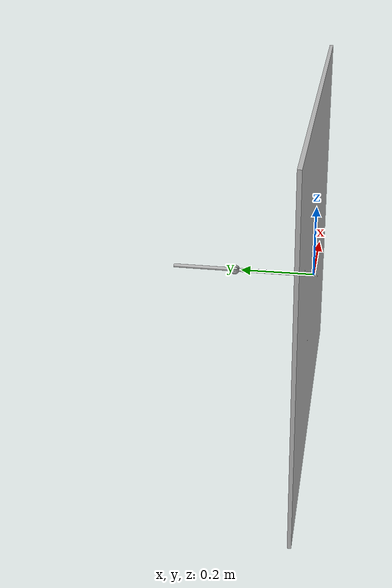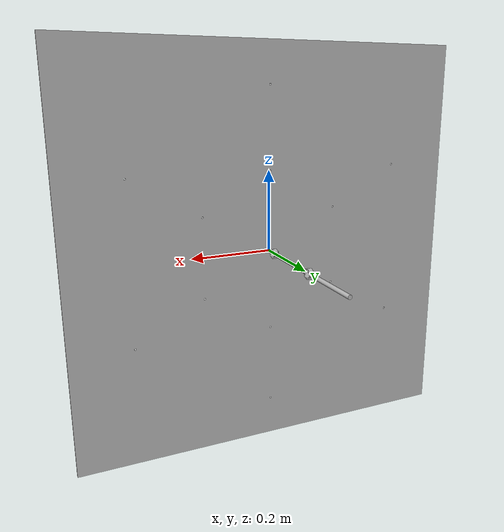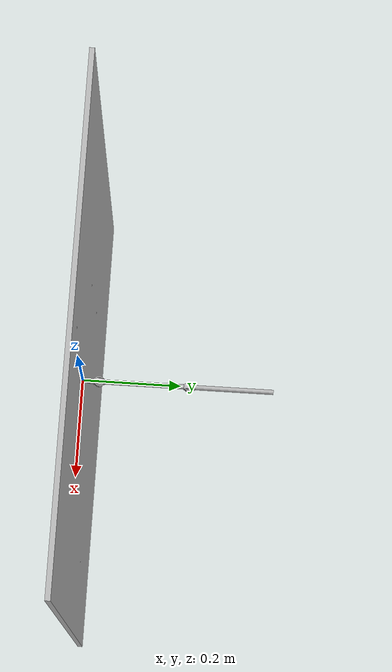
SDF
<?xml version="1.0" ?>
<sdf version="1.6">
	<model name="myo_test_bed_4dof">
		<link name="link_2">
			<pose frame="">0.00019695703494079008 0.12 6.358997858177507e-05 0.0 -0.0 0.0</pose>
			<inertial>
				<pose frame="">0.0 0.0 0.0 0 0 0</pose>
                <mass>0.01</mass>
                <inertia>
                    <ixx>0.0833</ixx>
                    <ixy>0</ixy>
                    <ixz>0</ixz>
                    <iyy>0</iyy>
                    <iyz>0</iyz>
                    <izz>0.0833</izz>
                </inertia>
			</inertial>
			<collision name="link_2_collision">
				<geometry>
					<mesh>
						<uri>model://myo_test_bed_4dof/meshes/CAD/link_2.stl</uri>
						<scale>0.001 0.001 0.001</scale>
					</mesh>
				</geometry>
			</collision>
			<visual name="link_2_visual">
				<geometry>
					<mesh>
						<uri>model://myo_test_bed_4dof/meshes/CAD/link_2.stl</uri>
						<scale>0.001 0.001 0.001</scale>
					</mesh>
				</geometry>
			</visual>
		</link>
		<link name="base_link">
			<pose frame="">0.0 0.01 0.0 0.0 -0.0 0.0</pose>
			<inertial>
				<pose frame="">0.0 0.0 0.0 0 0 0</pose>
				<mass>78.56260429372269</mass>
				<inertia>
					<ixx>6.543430492742436</ixx>
					<ixy>6.403824702705758e-11</ixy>
					<ixz>1.6356742045632723e-07</ixz>
					<iyy>13.081486062829601</iyy>
					<iyz>1.2932168936326539e-11</iyz>
					<izz>6.543430519863518</izz>
				</inertia>
			</inertial>
			<collision name="base_link_collision">
				<geometry>
					<mesh>
						<uri>model://myo_test_bed_4dof/meshes/CAD/base_link.stl</uri>
						<scale>0.001 0.001 0.001</scale>
					</mesh>
				</geometry>
			</collision>
			<visual name="base_link_visual">
				<geometry>
					<mesh>
						<uri>model://myo_test_bed_4dof/meshes/CAD/base_link.stl</uri>
						<scale>0.001 0.001 0.001</scale>
					</mesh>
				</geometry>
			</visual>
		</link>
		<link name="link_1">
			<pose frame="">4.4408920985006264e-17 0.02800304289055365 2.6645352591003756e-17 0.0 -0.0 0.0</pose>
			<inertial>
				<pose frame="">0.0 0.0 0.0 0 0 0</pose>
                <mass>0.01</mass>
                <inertia>
                    <ixx>0.0833</ixx>
                    <ixy>0</ixy>
                    <ixz>0</ixz>
                    <iyy>0</iyy>
                    <iyz>0</iyz>
                    <izz>0.0833</izz>
                </inertia>
			</inertial>
			<collision name="link_1_collision">
				<geometry>
					<mesh>
						<uri>model://myo_test_bed_4dof/meshes/CAD/link_1.stl</uri>
						<scale>0.001 0.001 0.001</scale>
					</mesh>
				</geometry>
			</collision>
			<visual name="link_1_visual">
				<geometry>
					<mesh>
						<uri>model://myo_test_bed_4dof/meshes/CAD/link_1.stl</uri>
						<scale>0.001 0.001 0.001</scale>
					</mesh>
				</geometry>
			</visual>
		</link>
		<link name="link_3">
			<pose frame="">0.00019695703494065352 0.21717624264445431 0.0051271799571633815 0.0 -0.0 0.0</pose>
			<inertial>
				<pose frame="">0.0 0.0 0.0 0 0 0</pose>
                <mass>0.01</mass>
                <inertia>
                    <ixx>0.0833</ixx>
                    <ixy>0</ixy>
                    <ixz>0</ixz>
                    <iyy>0</iyy>
                    <iyz>0</iyz>
                    <izz>0.0833</izz>
                </inertia>
			</inertial>
			<collision name="link_3_collision">
				<geometry>
					<mesh>
						<uri>model://myo_test_bed_4dof/meshes/CAD/link_3.stl</uri>
						<scale>0.001 0.001 0.001</scale>
					</mesh>
				</geometry>
			</collision>
			<visual name="link_3_visual">
				<geometry>
					<mesh>
						<uri>model://myo_test_bed_4dof/meshes/CAD/link_3.stl</uri>
						<scale>0.001 0.001 0.001</scale>
					</mesh>
				</geometry>
			</visual>
		</link>
		<link name="link_4">
			<pose frame="">0.0004908711048216796 0.31 0.0002960118883934104 0.0 -0.0 0.0</pose>
			<inertial>
				<pose frame="">0.0 0.0 0.0 0 0 0</pose>
                <mass>0.01</mass>
                <inertia>
                    <ixx>0.0833</ixx>
                    <ixy>0</ixy>
                    <ixz>0</ixz>
                    <iyy>0</iyy>
                    <iyz>0</iyz>
                    <izz>0.0833</izz>
                </inertia>
			</inertial>
			<collision name="link_4_collision">
				<geometry>
					<mesh>
						<uri>model://myo_test_bed_4dof/meshes/CAD/link_4.stl</uri>
						<scale>0.001 0.001 0.001</scale>
					</mesh>
				</geometry>
			</collision>
			<visual name="link_4_visual">
				<geometry>
					<mesh>
						<uri>model://myo_test_bed_4dof/meshes/CAD/link_4.stl</uri>
						<scale>0.001 0.001 0.001</scale>
					</mesh>
				</geometry>
			</visual>
		</link>
		<joint name="joint_1" type="revolute">
			<parent>base_link</parent>
			<child>link_1</child>
			<pose frame="">1.376676550535194e-16 0.005000000074505788 0.008060547013522167 0 0 0</pose>
			<axis>
				<xyz>-3.9898639947466563e-17 -2.7755575615628914e-17 1.0</xyz>
				<limit>
					<lower>-0.6</lower>
					<upper>0.6</upper>
				</limit>
				<use_parent_model_frame>0</use_parent_model_frame>
			</axis>
		</joint>
		<joint name="joint_2" type="revolute">
			<parent>link_1</parent>
			<child>link_2</child>
			<pose frame="">0.010099999999999965 -0.08699695703494056 -3.042965059573133e-06 0 0 0</pose>
			<axis>
				<xyz>-1.0 5.69748241641133e-17 -2.7708522298720435e-16</xyz>
                <limit>
                    <lower>-0.6</lower>
                    <upper>0.6</upper>
                </limit>
				<use_parent_model_frame>0</use_parent_model_frame>
			</axis>
		</joint>
		<joint name="joint_3" type="revolute">
			<parent>link_2</parent>
			<child>link_3</child>
			<pose frame="">-1.1102230246251566e-18 0.0 0.0029999999999999714 0 0 0</pose>
			<axis>
				<xyz>-3.6677382543981914e-16 2.007702259044089e-16 1.0</xyz>
                <limit>
                    <lower>-0.6</lower>
                    <upper>0.6</upper>
                </limit>
				<use_parent_model_frame>0</use_parent_model_frame>
			</axis>
		</joint>
		<joint name="joint_4" type="revolute">
			<parent>link_3</parent>
			<child>link_4</child>
			<pose frame="">0.010003042965059548 -0.0928237573555457 -0.00016883193123003016 0 0 0</pose>
			<axis>
				<xyz>-1.0 -9.093366325243862e-17 -1.2958724240008135e-16</xyz>
                <limit>
                    <lower>-0.6</lower>
                    <upper>0.6</upper>
                </limit>
				<use_parent_model_frame>0</use_parent_model_frame>
			</axis>
		</joint>

        <plugin name="joint_state_publisher" filename="libgazebo_ros_joint_state_publisher.so">
            <jointName>joint_1, joint_2, joint_3, joint_4</jointName>
            <updateRate>100.0</updateRate>
            <alwaysOn>true</alwaysOn>
        </plugin>

		<plugin filename="libmyomuscle_plugin.so" name="myomuscle_plugin">
			<myoMuscle name="motor0">
				<link name="base_link">
					<viaPoint type="FIXPOINT">-2.4492935982947065e-17 0.0 0.2</viaPoint>
				</link>
				<link name="link_2">
					<viaPoint type="FIXPOINT">-8.881784197001253e-18 0.08417319967939495 -2.2204460492503132e-17</viaPoint>
				</link>
			</myoMuscle>
			<myoMuscle name="motor1">
				<link name="base_link">
					<viaPoint type="FIXPOINT">0.1732050807568877 0.0 0.10000000000000007</viaPoint>
				</link>
				<link name="link_2">
					<viaPoint type="FIXPOINT">-8.881784197001253e-18 0.08417319967939495 -2.2204460492503132e-17</viaPoint>
				</link>
			</myoMuscle>
			<myoMuscle name="motor2">
				<link name="base_link">
					<viaPoint type="FIXPOINT">0.1732050807568878 0.0 -0.09999999999999987</viaPoint>
				</link>
				<link name="link_2">
					<viaPoint type="FIXPOINT">-8.881784197001253e-18 0.08417319967939495 -2.2204460492503132e-17</viaPoint>
				</link>
			</myoMuscle>
			<myoMuscle name="motor3">
				<link name="base_link">
					<viaPoint type="FIXPOINT">0.0 0.0 -0.2</viaPoint>
				</link>
				<link name="link_2">
					<viaPoint type="FIXPOINT">-8.881784197001253e-18 0.08417319967939495 -2.2204460492503132e-17</viaPoint>
				</link>
			</myoMuscle>
			<myoMuscle name="motor4">
				<link name="base_link">
					<viaPoint type="FIXPOINT">-0.1732050807568877 0.0 -0.10000000000000002</viaPoint>
				</link>
				<link name="link_2">
					<viaPoint type="FIXPOINT">-8.881784197001253e-18 0.08417319967939495 -2.2204460492503132e-17</viaPoint>
				</link>
			</myoMuscle>
			<myoMuscle name="motor5">
				<link name="base_link">
					<viaPoint type="FIXPOINT">-0.17320508075688779 0.0 0.09999999999999996</viaPoint>
				</link>
				<link name="link_2">
					<viaPoint type="FIXPOINT">-8.881784197001253e-18 0.08417319967939495 -2.2204460492503132e-17</viaPoint>
				</link>
			</myoMuscle>
			<myoMuscle name="motor6">
				<link name="base_link">
					<viaPoint type="FIXPOINT">-4.898587196589413e-17 0.0 0.4</viaPoint>
				</link>
				<link name="link_4">
					<viaPoint type="FIXPOINT">0.0 0.07834639935878983 -1.3322676295501878e-17</viaPoint>
				</link>
			</myoMuscle>
			<myoMuscle name="motor7">
				<link name="base_link">
					<viaPoint type="FIXPOINT">0.3464101615137754 0.0 0.20000000000000015</viaPoint>
				</link>
				<link name="link_4">
					<viaPoint type="FIXPOINT">0.0 0.07834639935878983 -1.3322676295501878e-17</viaPoint>
				</link>
			</myoMuscle>
			<myoMuscle name="motor8">
				<link name="base_link">
					<viaPoint type="FIXPOINT">0.3464101615137756 0.0 -0.19999999999999973</viaPoint>
				</link>
				<link name="link_4">
					<viaPoint type="FIXPOINT">0.0 0.07834639935878983 -1.3322676295501878e-17</viaPoint>
				</link>
			</myoMuscle>
			<myoMuscle name="motor9">
				<link name="base_link">
					<viaPoint type="FIXPOINT">0.0 0.0 -0.4</viaPoint>
				</link>
				<link name="link_4">
					<viaPoint type="FIXPOINT">0.0 0.07834639935878983 -1.3322676295501878e-17</viaPoint>
				</link>
			</myoMuscle>
			<myoMuscle name="motor10">
				<link name="base_link">
					<viaPoint type="FIXPOINT">-0.3464101615137754 0.0 -0.20000000000000004</viaPoint>
				</link>
				<link name="link_4">
					<viaPoint type="FIXPOINT">0.0 0.07834639935878983 -1.3322676295501878e-17</viaPoint>
				</link>
			</myoMuscle>
			<myoMuscle name="motor11">
				<link name="base_link">
					<viaPoint type="FIXPOINT">-0.34641016151377557 0.0 0.19999999999999993</viaPoint>
				</link>
				<link name="link_4">
					<viaPoint type="FIXPOINT">0.0 0.07834639935878983 -1.3322676295501878e-17</viaPoint>
				</link>
			</myoMuscle>
		</plugin>
	</model>
</sdf>
